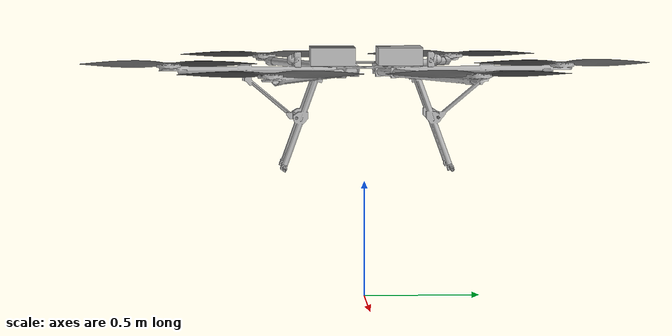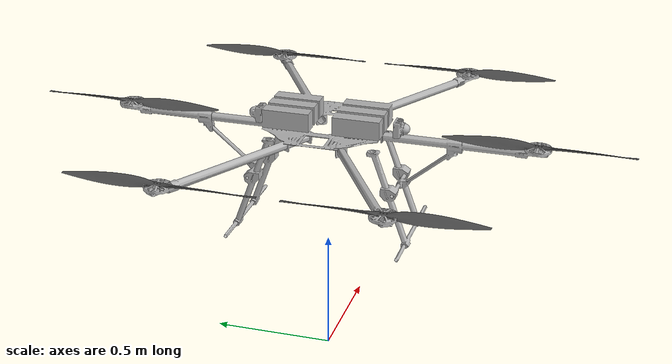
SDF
<?xml version="1.0" encoding="UTF-8"?>
<sdf version='1.9'>
  <model name='sprind'>
    <pose>0 0 1 0 0 0</pose>
    <self_collide>false</self_collide>
    <static>false</static>
    <link name="base_link">
      <inertial>
        <mass>19.74</mass>
        <pose>0 0 0.04 0 0 0</pose>
        <!-- enter the inertia values for the fuselage here, about the COM of the drone -->
        <inertia>
          <ixx>3.8</ixx>
          <ixy>0</ixy>
          <ixz>0</ixz>
          <iyy>2.67</iyy>
          <iyz>0</iyz>
          <izz>5.77</izz>
        </inertia>
      </inertial>
      <gravity>true</gravity>
      <velocity_decay/>
      <visual name="base_link_visual">
        <pose>0 0 0 0 0 0</pose>
        <geometry>
          <mesh>
            <scale>1 1 1</scale>
            <uri>model://sprind/meshes/sprind_compressed.stl</uri>
          </mesh>
        </geometry>
      </visual>
      <collision name="base_link_collision">
        <geometry>
          <mesh>
            <scale>1 1 1</scale>
            <uri>model://sprind/meshes/sprind_compressed.stl</uri>
          </mesh>
        </geometry>
        <surface>
          <contact>
            <ode>
              <kp>100000</kp>
              <kd>1.0</kd>
              <max_vel>0.1</max_vel>
              <min_depth>0.001</min_depth>
            </ode>
          </contact>
          <friction>
            <ode/>
          </friction>
        </surface>
      </collision>
      <sensor name="air_pressure_sensor" type="air_pressure">
        <always_on>1</always_on>
        <update_rate>50</update_rate>
        <air_pressure>
          <pressure>
            <noise type="gaussian">
              <mean>0</mean>
              <stddev>0.01</stddev>
            </noise>
          </pressure>
        </air_pressure>
      </sensor>
      <sensor name="imu_sensor" type="imu">
        <always_on>1</always_on>
        <update_rate>250</update_rate>
        <imu>
          <angular_velocity>
            <x>
              <noise type="gaussian">
                <mean>0</mean>
                <stddev>0.00018665</stddev>
                <dynamic_bias_stddev>3.8785e-05</dynamic_bias_stddev>
                <dynamic_bias_correlation_time>1000</dynamic_bias_correlation_time>
              </noise>
            </x>
            <y>
              <noise type="gaussian">
                <mean>0</mean>
                <stddev>0.00018665</stddev>
                <dynamic_bias_stddev>3.8785e-05</dynamic_bias_stddev>
                <dynamic_bias_correlation_time>1000</dynamic_bias_correlation_time>
              </noise>
            </y>
            <z>
              <noise type="gaussian">
                <mean>0</mean>
                <stddev>0.00018665</stddev>
                <dynamic_bias_stddev>3.8785e-05</dynamic_bias_stddev>
                <dynamic_bias_correlation_time>1000</dynamic_bias_correlation_time>
              </noise>
            </z>
          </angular_velocity>
          <linear_acceleration>
            <x>
              <noise type="gaussian">
                <mean>0</mean>
                <stddev>0.00186</stddev>
                <dynamic_bias_stddev>0.006</dynamic_bias_stddev>
                <dynamic_bias_correlation_time>300</dynamic_bias_correlation_time>
              </noise>
            </x>
            <y>
              <noise type="gaussian">
                <mean>0</mean>
                <stddev>0.00186</stddev>
                <dynamic_bias_stddev>0.006</dynamic_bias_stddev>
                <dynamic_bias_correlation_time>300</dynamic_bias_correlation_time>
              </noise>
            </y>
            <z>
              <noise type="gaussian">
                <mean>0</mean>
                <stddev>0.00186</stddev>
                <dynamic_bias_stddev>0.006</dynamic_bias_stddev>
                <dynamic_bias_correlation_time>300</dynamic_bias_correlation_time>
              </noise>
            </z>
          </linear_acceleration>
        </imu>
      </sensor>
      <sensor name="navsat_sensor" type="navsat">
        <always_on>1</always_on>
        <update_rate>30</update_rate>
      </sensor>
    </link>
    <link name="rotor_0">
      <gravity>true</gravity>
      <self_collide>false</self_collide>
      <velocity_decay/>
      <pose>0.008465 -0.84437 0.016 0 0 0</pose>
      <inertial>
          <mass>0.093</mass>
          <inertia>
            <ixx>0.0036525</ixx>
            <iyy>0.0000099</iyy>
            <izz>0.0036591</izz>
          </inertia>
      </inertial>
      <visual name="rotor_0_visual">
        <pose>0 0 0 0 0 0</pose>
        <geometry>
          <mesh>
            <scale>1 1 1</scale>
            <uri>model://sprind/meshes/cw_prop.stl</uri>
          </mesh>
        </geometry>
        <material>
          <script>
            <name>Gazebo/DarkGrey</name>
            <uri>file://media/materials/scripts/gazebo.material</uri>
          </script>
        </material>
      </visual>
      <collision name="rotor_0_collision">
        <pose>0 0 0 0 0 0</pose>
        <geometry>
          <mesh>
            <scale>1 1 1</scale>
            <uri>model://sprind/meshes/cw_prop.stl</uri>
          </mesh>
        </geometry>
        <surface>
          <contact>
            <ode>
              <kp>100000</kp>
              <kd>1.0</kd>
              <max_vel>0.1</max_vel>
              <min_depth>0.001</min_depth>
            </ode>
          </contact>
          <friction>
            <ode/>
          </friction>
        </surface>
      </collision>
    </link>
    <joint name="rotor_0_joint" type="revolute">
      <parent>base_link</parent>
      <child>rotor_0</child>
      <axis>
        <xyz>0 0 1</xyz>
        <limit>
          <lower>-1e+16</lower>
          <upper>1e+16</upper>
        </limit>
        <dynamics>
          <spring_reference>0</spring_reference>
          <spring_stiffness>0</spring_stiffness>
        </dynamics>
      </axis>
    </joint>
    <link name="rotor_1">
      <gravity>true</gravity>
      <self_collide>false</self_collide>
      <velocity_decay/>
      <pose>0.008616 0.85736 0.016 0 0 0</pose>
      <inertial>
          <mass>0.093</mass>
          <inertia>
            <ixx>0.0036525</ixx>
            <iyy>0.0000099</iyy>
            <izz>0.0036591</izz>
          </inertia>
      </inertial>
      <visual name="rotor_1_visual">
        <pose>0 0 0 0 0 0</pose>
        <geometry>
          <mesh>
            <scale>1 1 1</scale>
            <uri>model://sprind/meshes/ccw_prop.stl</uri>
          </mesh>
        </geometry>
        <material>
          <script>
            <name>Gazebo/DarkGrey</name>
            <uri>file://media/materials/scripts/gazebo.material</uri>
          </script>
        </material>
      </visual>
      <collision name="rotor_1_collision">
        <pose>0 0 0 0 0 0</pose>
        <geometry>
          <mesh>
            <scale>1 1 1</scale>
            <uri>model://sprind/meshes/ccw_prop.stl</uri>
          </mesh>
        </geometry>
        <surface>
          <contact>
            <ode>
              <kp>100000</kp>
              <kd>1.0</kd>
              <max_vel>0.1</max_vel>
              <min_depth>0.001</min_depth>
            </ode>
          </contact>
          <friction>
            <ode/>
          </friction>
        </surface>
      </collision>
    </link>
    <joint name="rotor_1_joint" type="revolute">
      <parent>base_link</parent>
      <child>rotor_1</child>
      <axis>
        <xyz>0 0 1</xyz>
        <limit>
          <lower>-1e+16</lower>
          <upper>1e+16</upper>
        </limit>
        <dynamics>
          <spring_reference>0</spring_reference>
          <spring_stiffness>0</spring_stiffness>
        </dynamics>
      </axis>
    </joint>
    <link name="rotor_2">
      <gravity>true</gravity>
      <self_collide>false</self_collide>
      <velocity_decay/>
      <pose>0.74545 0.43186 0.016 0 0 0</pose>
      <inertial>
          <mass>0.093</mass>
          <inertia>
            <ixx>0.0036525</ixx>
            <iyy>0.0000099</iyy>
            <izz>0.0036591</izz>
          </inertia>
      </inertial>
      <visual name="rotor_2_visual">
        <pose>0 0 0 0 0 0</pose>
        <geometry>
          <mesh>
            <scale>1 1 1</scale>
            <uri>model://sprind/meshes/cw_prop.stl</uri>
          </mesh>
        </geometry>
        <material>
          <script>
            <name>Gazebo/DarkGrey</name>
            <uri>file://media/materials/scripts/gazebo.material</uri>
          </script>
        </material>
      </visual>
      <collision name="rotor_2_collision">
        <pose>0 0 0 0 0 0</pose>
        <geometry>
          <mesh>
            <scale>1 1 1</scale>
            <uri>model://sprind/meshes/cw_prop.stl</uri>
          </mesh>
        </geometry>
        <surface>
          <contact>
            <ode>
              <kp>100000</kp>
              <kd>1.0</kd>
              <max_vel>0.1</max_vel>
              <min_depth>0.001</min_depth>
            </ode>
          </contact>
          <friction>
            <ode/>
          </friction>
        </surface>
      </collision>
    </link>
    <joint name="rotor_2_joint" type="revolute">
      <parent>base_link</parent>
      <child>rotor_2</child>
      <axis>
        <xyz>0 0 1</xyz>
        <limit>
          <lower>-1e+16</lower>
          <upper>1e+16</upper>
        </limit>
        <dynamics>
          <spring_reference>0</spring_reference>
          <spring_stiffness>0</spring_stiffness>
        </dynamics>
      </axis>
    </joint>
    <link name="rotor_3">
      <gravity>true</gravity>
      <self_collide>false</self_collide>
      <velocity_decay/>
      <pose>-0.72837 -0.41887 0.016 0 0 0</pose>
      <inertial>
          <mass>0.093</mass>
          <inertia>
            <ixx>0.0036525</ixx>
            <iyy>0.0000099</iyy>
            <izz>0.0036591</izz>
          </inertia>
      </inertial>
      <visual name="rotor_3_visual">
        <pose>0 0 0 0 0 0</pose>
        <geometry>
          <mesh>
            <scale>1 1 1</scale>
            <uri>model://sprind/meshes/ccw_prop.stl</uri>
          </mesh>
        </geometry>
        <material>
          <script>
            <name>Gazebo/DarkGrey</name>
            <uri>file://media/materials/scripts/gazebo.material</uri>
          </script>
        </material>
      </visual>
      <collision name="rotor_3_collision">
        <pose>0 0 0 0 0 0</pose>
        <geometry>
          <mesh>
            <scale>1 1 1</scale>
            <uri>model://sprind/meshes/ccw_prop.stl</uri>
          </mesh>
        </geometry>
        <surface>
          <contact>
            <ode>
              <kp>100000</kp>
              <kd>1.0</kd>
              <max_vel>0.1</max_vel>
              <min_depth>0.001</min_depth>
            </ode>
          </contact>
          <friction>
            <ode/>
          </friction>
        </surface>
      </collision>
    </link>
    <joint name="rotor_3_joint" type="revolute">
      <parent>base_link</parent>
      <child>rotor_3</child>
      <axis>
        <xyz>0 0 1</xyz>
        <limit>
          <lower>-1e+16</lower>
          <upper>1e+16</upper>
        </limit>
        <dynamics>
          <spring_reference>0</spring_reference>
          <spring_stiffness>0</spring_stiffness>
        </dynamics>
      </axis>
    </joint>
    <link name="rotor_4">
      <gravity>true</gravity>
      <self_collide>false</self_collide>
      <velocity_decay/>
      <pose>0.745715 -0.419 0.016 0 0 0</pose>
      <inertial>
          <mass>0.093</mass>
          <inertia>
            <ixx>0.0036525</ixx>
            <iyy>0.0000099</iyy>
            <izz>0.0036591</izz>
          </inertia>
      </inertial>
      <visual name="rotor_4_visual">
        <pose>0 0 0 0 0 0</pose>
        <geometry>
          <mesh>
            <scale>1 1 1</scale>
            <uri>model://sprind/meshes/ccw_prop.stl</uri>
          </mesh>
        </geometry>
        <material>
          <script>
            <name>Gazebo/DarkGrey</name>
            <uri>file://media/materials/scripts/gazebo.material</uri>
          </script>
        </material>
      </visual>
      <collision name="rotor_4_collision">
        <pose>0 0 0 0 0 0</pose>
        <geometry>
          <mesh>
            <scale>1 1 1</scale>
            <uri>model://sprind/meshes/ccw_prop.stl</uri>
          </mesh>
        </geometry>
        <surface>
          <contact>
            <ode>
              <kp>100000</kp>
              <kd>1.0</kd>
              <max_vel>0.1</max_vel>
              <min_depth>0.001</min_depth>
            </ode>
          </contact>
          <friction>
            <ode/>
          </friction>
        </surface>
      </collision>
    </link>
    <joint name="rotor_4_joint" type="revolute">
      <parent>base_link</parent>
      <child>rotor_4</child>
      <axis>
        <xyz>0 0 1</xyz>
        <limit>
          <lower>-1e+16</lower>
          <upper>1e+16</upper>
        </limit>
        <dynamics>
          <spring_reference>0</spring_reference>
          <spring_stiffness>0</spring_stiffness>
        </dynamics>
      </axis>
    </joint>
    <link name="rotor_5">
      <gravity>true</gravity>
      <self_collide>false</self_collide>
      <velocity_decay/>
      <pose>-0.7279 0.43261 0.016 0 0 0</pose>
      <inertial>
          <mass>0.093</mass>
          <inertia>
            <ixx>0.0036525</ixx>
            <iyy>0.0000099</iyy>
            <izz>0.0036591</izz>
          </inertia>
      </inertial>
      <visual name="rotor_5_visual">
        <pose>0 0 0 0 0 0</pose>
        <geometry>
          <mesh>
            <scale>1 1 1</scale>
            <uri>model://sprind/meshes/cw_prop.stl</uri>
          </mesh>
        </geometry>
        <material>
          <script>
            <name>Gazebo/DarkGrey</name>
            <uri>file://media/materials/scripts/gazebo.material</uri>
          </script>
        </material>
      </visual>
      <collision name="rotor_5_collision">
        <pose>0 0 0 0 0 0</pose>
        <geometry>
          <mesh>
            <scale>1 1 1</scale>
            <uri>model://sprind/meshes/cw_prop.stl</uri>
          </mesh>
        </geometry>
        <surface>
          <contact>
            <ode>
              <kp>100000</kp>
              <kd>1.0</kd>
              <max_vel>0.1</max_vel>
              <min_depth>0.001</min_depth>
            </ode>
          </contact>
          <friction>
            <ode/>
          </friction>
        </surface>
      </collision>
    </link>
    <joint name="rotor_5_joint" type="revolute">
      <parent>base_link</parent>
      <child>rotor_5</child>
      <axis>
        <xyz>0 0 1</xyz>
        <limit>
          <lower>-1e+16</lower>
          <upper>1e+16</upper>
        </limit>
        <dynamics>
          <spring_reference>0</spring_reference>
          <spring_stiffness>0</spring_stiffness>
        </dynamics>
      </axis>
    </joint>
    <plugin filename="gz-sim-multicopter-motor-model-system" name="gz::sim::systems::MulticopterMotorModel">
      <jointName>rotor_0_joint</jointName>
      <linkName>rotor_0</linkName>
      <turningDirection>cw</turningDirection>
      <timeConstantUp>0.0125</timeConstantUp>
      <timeConstantDown>0.025</timeConstantDown>
      <maxRotVelocity>3116</maxRotVelocity>
      <motorConstant>2.99e-04</motorConstant>
      <momentConstant>0.1061</momentConstant>
      <commandSubTopic>command/motor_speed</commandSubTopic>
      <motorNumber>0</motorNumber>
      <rotorDragCoefficient>0.0255</rotorDragCoefficient>
      <rollingMomentCoefficient>1e-06</rollingMomentCoefficient>
      <rotorVelocitySlowdownSim>10</rotorVelocitySlowdownSim>
      <motorType>velocity</motorType>
    </plugin>
    <plugin filename="gz-sim-multicopter-motor-model-system" name="gz::sim::systems::MulticopterMotorModel">
      <jointName>rotor_1_joint</jointName>
      <linkName>rotor_1</linkName>
      <turningDirection>ccw</turningDirection>
      <timeConstantUp>0.0125</timeConstantUp>
      <timeConstantDown>0.025</timeConstantDown>
      <maxRotVelocity>3116</maxRotVelocity>
      <motorConstant>2.99e-04</motorConstant>
      <momentConstant>0.1061</momentConstant>
      <commandSubTopic>command/motor_speed</commandSubTopic>
      <motorNumber>1</motorNumber>
      <rotorDragCoefficient>0.0255</rotorDragCoefficient>
      <rollingMomentCoefficient>1e-06</rollingMomentCoefficient>
      <rotorVelocitySlowdownSim>10</rotorVelocitySlowdownSim>
      <motorType>velocity</motorType>
    </plugin>
    <plugin filename="gz-sim-multicopter-motor-model-system" name="gz::sim::systems::MulticopterMotorModel">
      <jointName>rotor_2_joint</jointName>
      <linkName>rotor_2</linkName>
      <turningDirection>cw</turningDirection>
      <timeConstantUp>0.0125</timeConstantUp>
      <timeConstantDown>0.025</timeConstantDown>
      <maxRotVelocity>3116</maxRotVelocity>
      <motorConstant>2.99e-04</motorConstant>
      <momentConstant>0.1061</momentConstant>
      <commandSubTopic>command/motor_speed</commandSubTopic>
      <motorNumber>2</motorNumber>
      <rotorDragCoefficient>0.0255</rotorDragCoefficient>
      <rollingMomentCoefficient>1e-06</rollingMomentCoefficient>
      <rotorVelocitySlowdownSim>10</rotorVelocitySlowdownSim>
      <motorType>velocity</motorType>
    </plugin>
    <plugin filename="gz-sim-multicopter-motor-model-system" name="gz::sim::systems::MulticopterMotorModel">
      <jointName>rotor_3_joint</jointName>
      <linkName>rotor_3</linkName>
      <turningDirection>ccw</turningDirection>
      <timeConstantUp>0.0125</timeConstantUp>
      <timeConstantDown>0.025</timeConstantDown>
      <maxRotVelocity>3116</maxRotVelocity>
      <motorConstant>2.99e-04</motorConstant>
      <momentConstant>0.1061</momentConstant>
      <commandSubTopic>command/motor_speed</commandSubTopic>
      <motorNumber>3</motorNumber>
      <rotorDragCoefficient>0.0255</rotorDragCoefficient>
      <rollingMomentCoefficient>1e-06</rollingMomentCoefficient>
      <rotorVelocitySlowdownSim>10</rotorVelocitySlowdownSim>
      <motorType>velocity</motorType>
    </plugin>
    <plugin filename="gz-sim-multicopter-motor-model-system" name="gz::sim::systems::MulticopterMotorModel">
      <jointName>rotor_4_joint</jointName>
      <linkName>rotor_4</linkName>
      <turningDirection>ccw</turningDirection>
      <timeConstantUp>0.0125</timeConstantUp>
      <timeConstantDown>0.025</timeConstantDown>
      <maxRotVelocity>3116</maxRotVelocity>
      <motorConstant>2.99e-04</motorConstant>
      <momentConstant>0.1061</momentConstant>
      <commandSubTopic>command/motor_speed</commandSubTopic>
      <motorNumber>4</motorNumber>
      <rotorDragCoefficient>0.0255</rotorDragCoefficient>
      <rollingMomentCoefficient>1e-06</rollingMomentCoefficient>
      <rotorVelocitySlowdownSim>10</rotorVelocitySlowdownSim>
      <motorType>velocity</motorType>
    </plugin>
    <plugin filename="gz-sim-multicopter-motor-model-system" name="gz::sim::systems::MulticopterMotorModel">
      <jointName>rotor_5_joint</jointName>
      <linkName>rotor_5</linkName>
      <turningDirection>cw</turningDirection>
      <timeConstantUp>0.0125</timeConstantUp>
      <timeConstantDown>0.025</timeConstantDown>
      <maxRotVelocity>3116</maxRotVelocity>
      <motorConstant>2.99e-04</motorConstant>
      <momentConstant>0.1061</momentConstant>
      <commandSubTopic>command/motor_speed</commandSubTopic>
      <motorNumber>5</motorNumber>
      <rotorDragCoefficient>0.0255</rotorDragCoefficient>
      <rollingMomentCoefficient>1e-06</rollingMomentCoefficient>
      <rotorVelocitySlowdownSim>10</rotorVelocitySlowdownSim>
      <motorType>velocity</motorType>
    </plugin>
    <plugin
      filename="gz-sim-odometry-publisher-system"
      name="gz::sim::systems::OdometryPublisher">
      <odom_frame>map</odom_frame>
      <robot_base_frame>base_link</robot_base_frame>
      <odom_topic>odom</odom_topic>
      <dimensions>3</dimensions>
    </plugin>

    <include merge='false'>
      <uri>model://livox_mid360</uri>
      <name>lidar_left</name>
      <pose>0 0.3 0.03 -1.570796 0 0</pose>
    </include>

    <include merge='false'>
      <uri>model://livox_mid360</uri>
      <name>lidar_right</name>
      <pose>0 -0.3 0.03 1.570796 0 0</pose>
    </include>

    <joint name="LidarLeftJoint" type="fixed">
        <parent>base_link</parent>
        <child>lidar_left::link</child>
        <pose relative_to="base_link">0 0 0 0 0 0</pose>
    </joint>

    <joint name="LidarRightJoint" type="fixed">
        <parent>base_link</parent>
        <child>lidar_right::link</child>
        <pose relative_to="base_link">0 0 0 0 0 0</pose>
    </joint>
    </model>
</sdf>

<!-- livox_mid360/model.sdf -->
<sdf version="1.6">
  <model name="livox_mid360">
    <link name="link">
      <pose>0 0 0 0 0 0</pose>
      <inertial>
        <pose>0 0 0.0435 0 0 0</pose>
        <mass>0.265</mass>
        <inertia>
          <ixx>0.00034437749999999994</ixx>
          <ixy>0</ixy>
          <ixz>0</ixz>
          <iyy>0.00034437749999999994</iyy>
          <iyz>0</iyz>
          <izz>0.00022199999999999998</izz>
        </inertia>
      </inertial>
      <collision name="base_link_collision">
        <geometry>
          <mesh>
            <uri>model://livox_mid360/meshes/livox_resized.stl</uri>
          </mesh>
        </geometry>
      </collision>
      <visual name="visual">
        <geometry>
          <mesh>
            <uri>model://livox_mid360/meshes/livox_resized.stl</uri>
          </mesh>
        </geometry>
      </visual>
      <sensor name="RGLsensor" type="gpu_lidar">
        <update_rate>10</update_rate>

        <ray>
            <scan>
            <horizontal>
                <samples>400</samples>
                <resolution>1</resolution>
                <min_angle>-3.14159</min_angle>
                <max_angle>3.14159</max_angle>
            </horizontal>
            <vertical>
                <samples>50</samples>
                <resolution>1</resolution>
                <min_angle>-0.12217</min_angle>
                <max_angle>0.90757</max_angle>
            </vertical>
            </scan>

            <range>
            <min>1.0</min>
            <max>100.0</max>
            <resolution>0.01</resolution>
            </range>
        </ray>

        <always_on>1</always_on>
        <visualize>true</visualize>
      </sensor>
    </link>
  </model>
</sdf>
